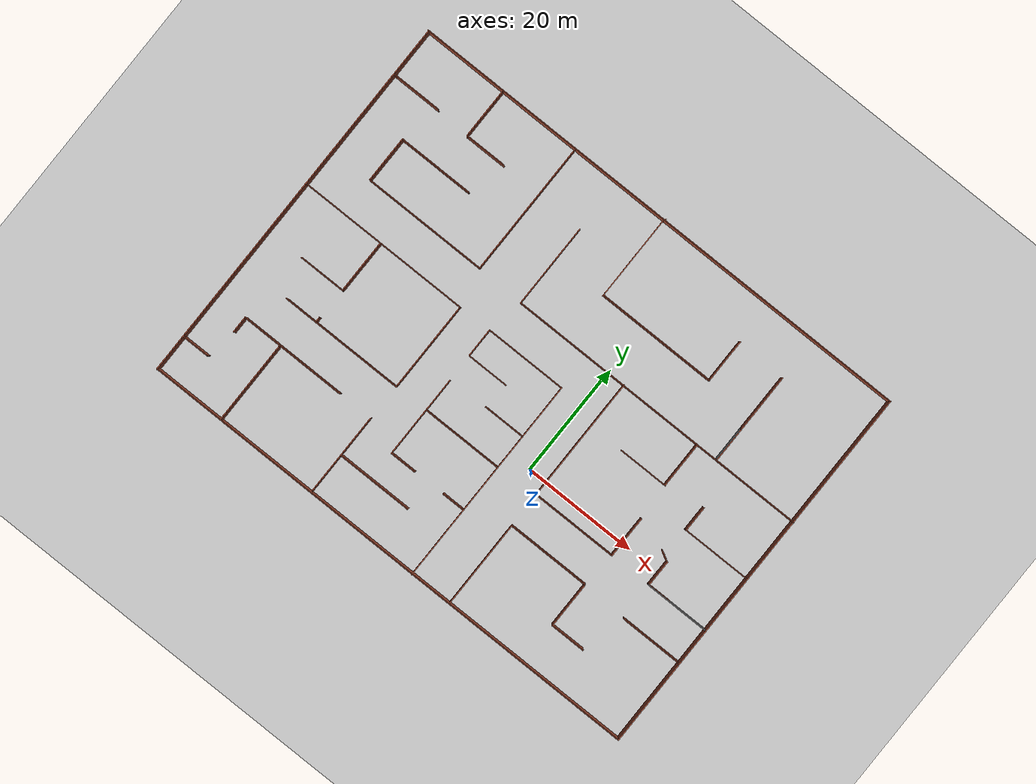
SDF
<sdf version="1.6">
 <world name="default">
  <light name="sun" type="directional">
   <pose>0 0 10 0 -0 0</pose>
   <diffuse>0.8 0.8 0.8 1</diffuse>
   <specular>0.1 0.1 0.1 1</specular>
   <attenuation>
    <range>1000</range>
    <constant>0.9</constant>
    <linear>0.01</linear>
    <quadratic>0.001</quadratic>
   </attenuation>
   <direction>-0.5 0.5 -1</direction>
  </light>
  <model name="ground_plane">
   <static>1</static>
   <link name="link">
    <collision name="collision">
     <geometry><plane><normal>0 0 1</normal><size>100 100</size></plane></geometry>
     <surface><friction><ode><mu>100</mu><mu2>50</mu2></ode></friction></surface>
    </collision>
    <visual name="visual">
     <cast_shadows>0</cast_shadows>
     <geometry><plane><normal>0 0 1</normal><size>100 100</size></plane></geometry>
     <material>
      <script><uri>file://media/materials/scripts/gazebo.material</uri><name>Gazebo/Grey</name></script>
     </material>
    </visual>
   </link>
  </model>
  <physics name="default_physics" default="0" type="ode">
   <max_step_size>0.01</max_step_size>
   <real_time_factor>1</real_time_factor>
   <real_time_update_rate>100</real_time_update_rate>
  </physics>
  <gravity>0 0 -9.8</gravity>
  <magnetic_field>6e-06 2.3e-05 -4.2e-05</magnetic_field>
  <atmosphere type="adiabatic"/>
  <scene><ambient>0.4 0.4 0.4 1</ambient><background>0.7 0.7 0.7 1</background><shadows>1</shadows></scene>
  <spherical_coordinates>
   <surface_model>EARTH_WGS84</surface_model>
   <latitude_deg>0</latitude_deg>
   <longitude_deg>0</longitude_deg>
   <elevation>0</elevation>
   <heading_deg>0</heading_deg>
  </spherical_coordinates>
  <model name="ROOM">
   <pose>-9.12607 9.74365 0 0 -0 0</pose>
   <link name="Wall_0">
    <collision name="Wall_0_Collision">
     <geometry><box><size>67.5 0.15 2.5</size></box></geometry>
     <pose>0 0 1.25 0 -0 0</pose>
    </collision>
    <visual name="Wall_0_Visual">
     <pose>0 0 1.25 0 -0 0</pose>
     <geometry><box><size>67.5 0.15 2.5</size></box></geometry>
     <material>
      <script><uri>file://media/materials/scripts/gazebo.material</uri><name>Gazebo/Bricks</name></script>
      <ambient>1 1 1 1</ambient>
     </material>
    </visual>
    <pose>-45.9078 -0.131946 0 0 -0 1.5708</pose>
   </link>
   <link name="Wall_10">
    <collision name="Wall_10_Collision">
     <geometry><box><size>37.25 0.15 2.5</size></box></geometry>
     <pose>0 0 1.25 0 -0 0</pose>
    </collision>
    <visual name="Wall_10_Visual">
     <pose>0 0 1.25 0 -0 0</pose>
     <geometry><box><size>37.25 0.15 2.5</size></box></geometry>
     <material>
      <script><uri>file://media/materials/scripts/gazebo.material</uri><name>Gazebo/Bricks</name></script>
      <ambient>1 1 1 1</ambient>
     </material>
    </visual>
    <pose>4.88469 -15.2529 0 0 0 -1.5708</pose>
   </link>
   <link name="Wall_101">
    <collision name="Wall_101_Collision">
     <geometry><box><size>11.4433 0.15 2.5</size></box></geometry>
     <pose>0 0 1.25 0 -0 0</pose>
    </collision>
    <visual name="Wall_101_Visual">
     <pose>0 0 1.25 0 -0 0</pose>
     <geometry><box><size>11.4433 0.15 2.5</size></box></geometry>
     <material>
      <script><uri>file://media/materials/scripts/gazebo.material</uri><name>Gazebo/Grey</name></script>
      <ambient>1 1 1 1</ambient>
     </material>
    </visual>
    <pose>40.1712 -12.0489 0 0 -0 0</pose>
   </link>
   <link name="Wall_102">
    <collision name="Wall_102_Collision">
     <geometry><box><size>11.4433 0.15 2.5</size></box></geometry>
     <pose>0 0 1.25 0 -0 0</pose>
    </collision>
    <visual name="Wall_102_Visual">
     <pose>0 0 1.25 0 -0 0</pose>
     <geometry><box><size>11.4433 0.15 2.5</size></box></geometry>
     <material>
      <script><uri>file://media/materials/scripts/gazebo.material</uri><name>Gazebo/Bricks</name></script>
      <ambient>1 1 1 1</ambient>
     </material>
    </visual>
    <pose>40.1712 -12.0489 0 0 -0 3.14159</pose>
   </link>
   <link name="Wall_103">
    <collision name="Wall_103_Collision">
     <geometry><box><size>4.75 0.15 2.5</size></box></geometry>
     <pose>0 0 1.25 0 -0 0</pose>
    </collision>
    <visual name="Wall_103_Visual">
     <pose>0 0 1.25 0 -0 0</pose>
     <geometry><box><size>4.75 0.15 2.5</size></box></geometry>
     <material>
      <script><uri>file://media/materials/scripts/gazebo.material</uri><name>Gazebo/Bricks</name></script>
      <ambient>1 1 1 1</ambient>
     </material>
    </visual>
    <pose>34.5953 -9.74895 0 0 -0 1.5708</pose>
   </link>
   <link name="Wall_104">
    <collision name="Wall_104_Collision">
     <geometry><box><size>1.92361 0.15 2.5</size></box></geometry>
     <pose>0 0 1.25 0 -0 0</pose>
    </collision>
    <visual name="Wall_104_Visual">
     <pose>0 0 1.25 0 -0 0</pose>
     <geometry><box><size>1.92361 0.15 2.5</size></box></geometry>
     <material>
      <script><uri>file://media/materials/scripts/gazebo.material</uri><name>Gazebo/Bricks</name></script>
      <ambient>1 1 1 1</ambient>
     </material>
    </visual>
    <pose>33.7462 -7.02395 0 0 -0 2.64179</pose>
   </link>
   <link name="Wall_106">
    <collision name="Wall_106_Collision">
     <geometry><box><size>4.5 0.15 2.5</size></box></geometry>
     <pose>0 0 1.25 0 -0 0</pose>
    </collision>
    <visual name="Wall_106_Visual">
     <pose>0 0 1.25 0 -0 0</pose>
     <geometry><box><size>4.5 0.15 2.5</size></box></geometry>
     <material>
      <script><uri>file://media/materials/scripts/gazebo.material</uri><name>Gazebo/Bricks</name></script>
      <ambient>1 1 1 1</ambient>
     </material>
    </visual>
    <pose>33.7603 0.456582 0 0 -0 1.5708</pose>
   </link>
   <link name="Wall_108">
    <collision name="Wall_108_Collision">
     <geometry><box><size>6.25 0.15 2.5</size></box></geometry>
     <pose>0 0 1.25 0 -0 0</pose>
    </collision>
    <visual name="Wall_108_Visual">
     <pose>0 0 1.25 0 -0 0</pose>
     <geometry><box><size>6.25 0.15 2.5</size></box></geometry>
     <material>
      <script><uri>file://media/materials/scripts/gazebo.material</uri><name>Gazebo/Bricks</name></script>
      <ambient>1 1 1 1</ambient>
     </material>
    </visual>
    <pose>29.9077 -26.3217 0 0 -0 0</pose>
   </link>
   <link name="Wall_110">
    <collision name="Wall_110_Collision">
     <geometry><box><size>10.75 0.15 2.5</size></box></geometry>
     <pose>0 0 1.25 0 -0 0</pose>
    </collision>
    <visual name="Wall_110_Visual">
     <pose>0 0 1.25 0 -0 0</pose>
     <geometry><box><size>10.75 0.15 2.5</size></box></geometry>
     <material>
      <script><uri>file://media/materials/scripts/gazebo.material</uri><name>Gazebo/Bricks</name></script>
      <ambient>1 1 1 1</ambient>
     </material>
    </visual>
    <pose>40.2354 -18.5752 0 0 -0 0</pose>
   </link>
   <link name="Wall_12">
    <collision name="Wall_12_Collision">
     <geometry><box><size>22 0.15 2.5</size></box></geometry>
     <pose>0 0 1.25 0 -0 0</pose>
    </collision>
    <visual name="Wall_12_Visual">
     <pose>0 0 1.25 0 -0 0</pose>
     <geometry><box><size>22 0.15 2.5</size></box></geometry>
     <material>
      <script><uri>file://media/materials/scripts/gazebo.material</uri><name>Gazebo/Bricks</name></script>
      <ambient>1 1 1 1</ambient>
     </material>
    </visual>
    <pose>-27.6266 9.81099 0 0 -0 0</pose>
   </link>
   <link name="Wall_14">
    <collision name="Wall_14_Collision">
     <geometry><box><size>23.75 0.15 2.5</size></box></geometry>
     <pose>0 0 1.25 0 -0 0</pose>
    </collision>
    <visual name="Wall_14_Visual">
     <pose>0 0 1.25 0 -0 0</pose>
     <geometry><box><size>23.75 0.15 2.5</size></box></geometry>
     <material>
      <script><uri>file://media/materials/scripts/gazebo.material</uri><name>Gazebo/Bricks</name></script>
      <ambient>1 1 1 1</ambient>
     </material>
    </visual>
    <pose>-16.7016 21.611 0 0 -0 1.5708</pose>
   </link>
   <link name="Wall_16">
    <collision name="Wall_16_Collision">
     <geometry><box><size>14.75 0.15 2.5</size></box></geometry>
     <pose>0 0 1.25 0 -0 0</pose>
    </collision>
    <visual name="Wall_16_Visual">
     <pose>0 0 1.25 0 -0 0</pose>
     <geometry><box><size>14.75 0.15 2.5</size></box></geometry>
     <material>
      <script><uri>file://media/materials/scripts/gazebo.material</uri><name>Gazebo/Bricks</name></script>
      <ambient>1 1 1 1</ambient>
     </material>
    </visual>
    <pose>-8.36079 16.9183 0 0 0 -1.5708</pose>
   </link>
   <link name="Wall_17">
    <collision name="Wall_17_Collision">
     <geometry><box><size>54.5 0.15 2.5</size></box></geometry>
     <pose>0 0 1.25 0 -0 0</pose>
    </collision>
    <visual name="Wall_17_Visual">
     <pose>0 0 1.25 0 -0 0</pose>
     <geometry><box><size>54.5 0.15 2.5</size></box></geometry>
     <material>
      <script><uri>file://media/materials/scripts/gazebo.material</uri><name>Gazebo/Bricks</name></script>
      <ambient>1 1 1 1</ambient>
     </material>
    </visual>
    <pose>18.8142 9.61828 0 0 -0 0</pose>
   </link>
   <link name="Wall_20">
    <collision name="Wall_20_Collision">
     <geometry><box><size>22 0.15 2.5</size></box></geometry>
     <pose>0 0 1.25 0 -0 0</pose>
    </collision>
    <visual name="Wall_20_Visual">
     <pose>0 0 1.25 0 -0 0</pose>
     <geometry><box><size>22 0.15 2.5</size></box></geometry>
     <material>
      <script><uri>file://media/materials/scripts/gazebo.material</uri><name>Gazebo/Bricks</name></script>
      <ambient>1 1 1 1</ambient>
     </material>
    </visual>
    <pose>12.1547 -1.17184 0 0 0 -1.5708</pose>
   </link>
   <link name="Wall_22">
    <collision name="Wall_22_Collision">
     <geometry><box><size>30.5 0.15 2.5</size></box></geometry>
     <pose>0 0 1.25 0 -0 0</pose>
    </collision>
    <visual name="Wall_22_Visual">
     <pose>0 0 1.25 0 -0 0</pose>
     <geometry><box><size>30.5 0.15 2.5</size></box></geometry>
     <material>
      <script><uri>file://media/materials/scripts/gazebo.material</uri><name>Gazebo/Bricks</name></script>
      <ambient>1 1 1 1</ambient>
     </material>
    </visual>
    <pose>-30.4322 3.18983 0 0 -0 3.14159</pose>
   </link>
   <link name="Wall_23">
    <collision name="Wall_23_Collision">
     <geometry><box><size>0.5 0.15 2.5</size></box></geometry>
     <pose>0 0 1.25 0 -0 0</pose>
    </collision>
    <visual name="Wall_23_Visual">
     <pose>0 0 1.25 0 -0 0</pose>
     <geometry><box><size>0.5 0.15 2.5</size></box></geometry>
     <material>
      <script><uri>file://media/materials/scripts/gazebo.material</uri><name>Gazebo/Bricks</name></script>
      <ambient>1 1 1 1</ambient>
     </material>
    </visual>
    <pose>-45.7822 3.18983 0 0 -0 3.14159</pose>
   </link>
   <link name="Wall_25">
    <collision name="Wall_25_Collision">
     <geometry><box><size>16 0.15 2.5</size></box></geometry>
     <pose>0 0 1.25 0 -0 0</pose>
    </collision>
    <visual name="Wall_25_Visual">
     <pose>0 0 1.25 0 -0 0</pose>
     <geometry><box><size>16 0.15 2.5</size></box></geometry>
     <material>
      <script><uri>file://media/materials/scripts/gazebo.material</uri><name>Gazebo/Bricks</name></script>
      <ambient>1 1 1 1</ambient>
     </material>
    </visual>
    <pose>-15.2572 -4.73517 0 0 0 -1.5708</pose>
   </link>
   <link name="Wall_26">
    <collision name="Wall_26_Collision">
     <geometry><box><size>22 0.15 2.5</size></box></geometry>
     <pose>0 0 1.25 0 -0 0</pose>
    </collision>
    <visual name="Wall_26_Visual">
     <pose>0 0 1.25 0 -0 0</pose>
     <geometry><box><size>22 0.15 2.5</size></box></geometry>
     <material>
      <script><uri>file://media/materials/scripts/gazebo.material</uri><name>Gazebo/Bricks</name></script>
      <ambient>1 1 1 1</ambient>
     </material>
    </visual>
    <pose>-26.1822 -12.6602 0 0 -0 3.14159</pose>
   </link>
   <link name="Wall_28">
    <collision name="Wall_28_Collision">
     <geometry><box><size>9.5 0.15 2.5</size></box></geometry>
     <pose>0 0 1.25 0 -0 0</pose>
    </collision>
    <visual name="Wall_28_Visual">
     <pose>0 0 1.25 0 -0 0</pose>
     <geometry><box><size>9.5 0.15 2.5</size></box></geometry>
     <material>
      <script><uri>file://media/materials/scripts/gazebo.material</uri><name>Gazebo/Bricks</name></script>
      <ambient>1 1 1 1</ambient>
     </material>
    </visual>
    <pose>-31.1245 -1.56654 0 0 0 -1.5708</pose>
   </link>
   <link name="Wall_31">
    <collision name="Wall_31_Collision">
     <geometry><box><size>19 0.15 2.5</size></box></geometry>
     <pose>0 0 1.25 0 -0 0</pose>
    </collision>
    <visual name="Wall_31_Visual">
     <pose>0 0 1.25 0 -0 0</pose>
     <geometry><box><size>19 0.15 2.5</size></box></geometry>
     <material>
      <script><uri>file://media/materials/scripts/gazebo.material</uri><name>Gazebo/Bricks</name></script>
      <ambient>1 1 1 1</ambient>
     </material>
    </visual>
    <pose>-30.8312 -18.9802 0 0 -0 0</pose>
   </link>
   <link name="Wall_33">
    <collision name="Wall_33_Collision">
     <geometry><box><size>3 0.15 2.5</size></box></geometry>
     <pose>0 0 1.25 0 -0 0</pose>
    </collision>
    <visual name="Wall_33_Visual">
     <pose>0 0 1.25 0 -0 0</pose>
     <geometry><box><size>3 0.15 2.5</size></box></geometry>
     <material>
      <script><uri>file://media/materials/scripts/gazebo.material</uri><name>Gazebo/Bricks</name></script>
      <ambient>1 1 1 1</ambient>
     </material>
    </visual>
    <pose>-40.2562 -20.4052 0 0 0 -1.5708</pose>
   </link>
   <link name="Wall_36">
    <collision name="Wall_36_Collision">
     <geometry><box><size>4.75 0.15 2.5</size></box></geometry>
     <pose>0 0 1.25 0 -0 0</pose>
    </collision>
    <visual name="Wall_36_Visual">
     <pose>0 0 1.25 0 -0 0</pose>
     <geometry><box><size>4.75 0.15 2.5</size></box></geometry>
     <material>
      <script><uri>file://media/materials/scripts/gazebo.material</uri><name>Gazebo/Bricks</name></script>
      <ambient>1 1 1 1</ambient>
     </material>
    </visual>
    <pose>-43.462 -27.2651 0 0 -0 0</pose>
   </link>
   <link name="Wall_38">
    <collision name="Wall_38_Collision">
     <geometry><box><size>14.75 0.15 2.5</size></box></geometry>
     <pose>0 0 1.25 0 -0 0</pose>
    </collision>
    <visual name="Wall_38_Visual">
     <pose>0 0 1.25 0 -0 0</pose>
     <geometry><box><size>14.75 0.15 2.5</size></box></geometry>
     <material>
      <script><uri>file://media/materials/scripts/gazebo.material</uri><name>Gazebo/Bricks</name></script>
      <ambient>1 1 1 1</ambient>
     </material>
    </visual>
    <pose>-33.3163 -26.3611 0 0 0 -1.5708</pose>
   </link>
   <link name="Wall_40">
    <collision name="Wall_40_Collision">
     <geometry><box><size>8.25 0.15 2.5</size></box></geometry>
     <pose>0 0 1.25 0 -0 0</pose>
    </collision>
    <visual name="Wall_40_Visual">
     <pose>0 0 1.25 0 -0 0</pose>
     <geometry><box><size>8.25 0.15 2.5</size></box></geometry>
     <material>
      <script><uri>file://media/materials/scripts/gazebo.material</uri><name>Gazebo/Bricks</name></script>
      <ambient>1 1 1 1</ambient>
     </material>
    </visual>
    <pose>-35.1745 -6.24154 0 0 -0 3.14159</pose>
   </link>
   <link name="Wall_42">
    <collision name="Wall_42_Collision">
     <geometry><box><size>1 0.15 2.5</size></box></geometry>
     <pose>0 0 1.25 0 -0 0</pose>
    </collision>
    <visual name="Wall_42_Visual">
     <pose>0 0 1.25 0 -0 0</pose>
     <geometry><box><size>1 0.15 2.5</size></box></geometry>
     <material>
      <script><uri>file://media/materials/scripts/gazebo.material</uri><name>Gazebo/Bricks</name></script>
      <ambient>1 1 1 1</ambient>
     </material>
    </visual>
    <pose>-31.2761 -12.1959 0 0 -0 1.5708</pose>
   </link>
   <link name="Wall_44">
    <collision name="Wall_44_Collision">
     <geometry><box><size>5.25 0.15 2.5</size></box></geometry>
     <pose>0 0 1.25 0 -0 0</pose>
    </collision>
    <visual name="Wall_44_Visual">
     <pose>0 0 1.25 0 -0 0</pose>
     <geometry><box><size>5.25 0.15 2.5</size></box></geometry>
     <material>
      <script><uri>file://media/materials/scripts/gazebo.material</uri><name>Gazebo/Bricks</name></script>
      <ambient>1 1 1 1</ambient>
     </material>
    </visual>
    <pose>-9.46531 0.747103 0 0 0 -1.5708</pose>
   </link>
   <link name="Wall_47">
    <collision name="Wall_47_Collision">
     <geometry><box><size>6 0.15 2.5</size></box></geometry>
     <pose>0 0 1.25 0 -0 0</pose>
    </collision>
    <visual name="Wall_47_Visual">
     <pose>0 0 1.25 0 -0 0</pose>
     <geometry><box><size>6 0.15 2.5</size></box></geometry>
     <material>
      <script><uri>file://media/materials/scripts/gazebo.material</uri><name>Gazebo/Bricks</name></script>
      <ambient>1 1 1 1</ambient>
     </material>
    </visual>
    <pose>-9.37077 -9.6294 0 0 0 -1.5708</pose>
   </link>
   <link name="Wall_48">
    <collision name="Wall_48_Collision">
     <geometry><box><size>14.25 0.15 2.5</size></box></geometry>
     <pose>0 0 1.25 0 -0 0</pose>
    </collision>
    <visual name="Wall_48_Visual">
     <pose>0 0 1.25 0 -0 0</pose>
     <geometry><box><size>14.25 0.15 2.5</size></box></geometry>
     <material>
      <script><uri>file://media/materials/scripts/gazebo.material</uri><name>Gazebo/Bricks</name></script>
      <ambient>1 1 1 1</ambient>
     </material>
    </visual>
    <pose>-2.32077 -12.5544 0 0 -0 0</pose>
   </link>
   <link name="Wall_5">
    <collision name="Wall_5_Collision">
     <geometry><box><size>92.0814 0.15 2.5</size></box></geometry>
     <pose>0 0 1.25 0 -0 0</pose>
    </collision>
    <visual name="Wall_5_Visual">
     <pose>0 0 1.25 0 -0 0</pose>
     <geometry><box><size>92.0814 0.15 2.5</size></box></geometry>
     <material>
      <script><uri>file://media/materials/scripts/gazebo.material</uri><name>Gazebo/Bricks</name></script>
      <ambient>1 1 1 1</ambient>
     </material>
    </visual>
    <pose>-0.023456 33.5837 0 0 -0 0.000885</pose>
   </link>
   <link name="Wall_50">
    <collision name="Wall_50_Collision">
     <geometry><box><size>7.5 0.15 2.5</size></box></geometry>
     <pose>0 0 1.25 0 -0 0</pose>
    </collision>
    <visual name="Wall_50_Visual">
     <pose>0 0 1.25 0 -0 0</pose>
     <geometry><box><size>7.5 0.15 2.5</size></box></geometry>
     <material>
      <script><uri>file://media/materials/scripts/gazebo.material</uri><name>Gazebo/Bricks</name></script>
      <ambient>1 1 1 1</ambient>
     </material>
    </visual>
    <pose>1.2287 -6.39676 0 0 -0 3.14159</pose>
   </link>
   <link name="Wall_52">
    <collision name="Wall_52_Collision">
     <geometry><box><size>7.5 0.15 2.5</size></box></geometry>
     <pose>0 0 1.25 0 -0 0</pose>
    </collision>
    <visual name="Wall_52_Visual">
     <pose>0 0 1.25 0 -0 0</pose>
     <geometry><box><size>7.5 0.15 2.5</size></box></geometry>
     <material>
      <script><uri>file://media/materials/scripts/gazebo.material</uri><name>Gazebo/Bricks</name></script>
      <ambient>1 1 1 1</ambient>
     </material>
    </visual>
    <pose>-5.79031 -1.8029 0 0 -0 0</pose>
   </link>
   <link name="Wall_56">
    <collision name="Wall_56_Collision">
     <geometry><box><size>14.75 0.15 2.5</size></box></geometry>
     <pose>0 0 1.25 0 -0 0</pose>
    </collision>
    <visual name="Wall_56_Visual">
     <pose>0 0 1.25 0 -0 0</pose>
     <geometry><box><size>14.75 0.15 2.5</size></box></geometry>
     <material>
      <script><uri>file://media/materials/scripts/gazebo.material</uri><name>Gazebo/Bricks</name></script>
      <ambient>1 1 1 1</ambient>
     </material>
    </visual>
    <pose>-15.2936 -26.3148 0 0 0 -1.5708</pose>
   </link>
   <link name="Wall_58">
    <collision name="Wall_58_Collision">
     <geometry><box><size>8.75 0.15 2.5</size></box></geometry>
     <pose>0 0 1.25 0 -0 0</pose>
    </collision>
    <visual name="Wall_58_Visual">
     <pose>0 0 1.25 0 -0 0</pose>
     <geometry><box><size>8.75 0.15 2.5</size></box></geometry>
     <material>
      <script><uri>file://media/materials/scripts/gazebo.material</uri><name>Gazebo/Bricks</name></script>
      <ambient>1 1 1 1</ambient>
     </material>
    </visual>
    <pose>-9.37077 -16.8544 0 0 0 -1.5708</pose>
   </link>
   <link name="Wall_59">
    <collision name="Wall_59_Collision">
     <geometry><box><size>4.75 0.15 2.5</size></box></geometry>
     <pose>0 0 1.25 0 -0 0</pose>
    </collision>
    <visual name="Wall_59_Visual">
     <pose>0 0 1.25 0 -0 0</pose>
     <geometry><box><size>4.75 0.15 2.5</size></box></geometry>
     <material>
      <script><uri>file://media/materials/scripts/gazebo.material</uri><name>Gazebo/Bricks</name></script>
      <ambient>1 1 1 1</ambient>
     </material>
    </visual>
    <pose>-7.07077 -21.1544 0 0 -0 0</pose>
   </link>
   <link name="Wall_6">
    <collision name="Wall_6_Collision">
     <geometry><box><size>67.5 0.15 2.5</size></box></geometry>
     <pose>0 0 1.25 0 -0 0</pose>
    </collision>
    <visual name="Wall_6_Visual">
     <pose>0 0 1.25 0 -0 0</pose>
     <geometry><box><size>67.5 0.15 2.5</size></box></geometry>
     <material>
      <script><uri>file://media/materials/scripts/gazebo.material</uri><name>Gazebo/Bricks</name></script>
      <ambient>1 1 1 1</ambient>
     </material>
    </visual>
    <pose>45.9422 -0.050575 0 0 0 -1.5708</pose>
   </link>
   <link name="Wall_61">
    <collision name="Wall_61_Collision">
     <geometry><box><size>13.5 0.15 2.5</size></box></geometry>
     <pose>0 0 1.25 0 -0 0</pose>
    </collision>
    <visual name="Wall_61_Visual">
     <pose>0 0 1.25 0 -0 0</pose>
     <geometry><box><size>13.5 0.15 2.5</size></box></geometry>
     <material>
      <script><uri>file://media/materials/scripts/gazebo.material</uri><name>Gazebo/Bricks</name></script>
      <ambient>1 1 1 1</ambient>
     </material>
    </visual>
    <pose>-8.61861 -26.3325 0 0 -0 0</pose>
   </link>
   <link name="Wall_63">
    <collision name="Wall_63_Collision">
     <geometry><box><size>4 0.15 2.5</size></box></geometry>
     <pose>0 0 1.25 0 -0 0</pose>
    </collision>
    <visual name="Wall_63_Visual">
     <pose>0 0 1.25 0 -0 0</pose>
     <geometry><box><size>4 0.15 2.5</size></box></geometry>
     <material>
      <script><uri>file://media/materials/scripts/gazebo.material</uri><name>Gazebo/Bricks</name></script>
      <ambient>1 1 1 1</ambient>
     </material>
    </visual>
    <pose>2.80683 -21.0369 0 0 -0 3.14159</pose>
   </link>
   <link name="Wall_67">
    <collision name="Wall_67_Collision">
     <geometry><box><size>8.25 0.15 2.5</size></box></geometry>
     <pose>0 0 1.25 0 -0 0</pose>
    </collision>
    <visual name="Wall_67_Visual">
     <pose>0 0 1.25 0 -0 0</pose>
     <geometry><box><size>8.25 0.15 2.5</size></box></geometry>
     <material>
      <script><uri>file://media/materials/scripts/gazebo.material</uri><name>Gazebo/Bricks</name></script>
      <ambient>1 1 1 1</ambient>
     </material>
    </visual>
    <pose>-38.5516 13.861 0 0 -0 1.5708</pose>
   </link>
   <link name="Wall_68">
    <collision name="Wall_68_Collision">
     <geometry><box><size>13.25 0.15 2.5</size></box></geometry>
     <pose>0 0 1.25 0 -0 0</pose>
    </collision>
    <visual name="Wall_68_Visual">
     <pose>0 0 1.25 0 -0 0</pose>
     <geometry><box><size>13.25 0.15 2.5</size></box></geometry>
     <material>
      <script><uri>file://media/materials/scripts/gazebo.material</uri><name>Gazebo/Bricks</name></script>
      <ambient>1 1 1 1</ambient>
     </material>
    </visual>
    <pose>-32.0016 17.911 0 0 -0 0</pose>
   </link>
   <link name="Wall_7">
    <collision name="Wall_7_Collision">
     <geometry><box><size>92 0.15 2.5</size></box></geometry>
     <pose>0 0 1.25 0 -0 0</pose>
    </collision>
    <visual name="Wall_7_Visual">
     <pose>0 0 1.25 0 -0 0</pose>
     <geometry><box><size>92 0.15 2.5</size></box></geometry>
     <material>
      <script><uri>file://media/materials/scripts/gazebo.material</uri><name>Gazebo/Bricks</name></script>
      <ambient>1 1 1 1</ambient>
     </material>
    </visual>
    <pose>0.01723 -33.7256 0 0 -0 3.14159</pose>
   </link>
   <link name="Wall_71">
    <collision name="Wall_71_Collision">
     <geometry><box><size>9 0.15 2.5</size></box></geometry>
     <pose>0 0 1.25 0 -0 0</pose>
    </collision>
    <visual name="Wall_71_Visual">
     <pose>0 0 1.25 0 -0 0</pose>
     <geometry><box><size>9 0.15 2.5</size></box></geometry>
     <material>
      <script><uri>file://media/materials/scripts/gazebo.material</uri><name>Gazebo/Bricks</name></script>
      <ambient>1 1 1 1</ambient>
     </material>
    </visual>
    <pose>-31.0945 29.0125 0 0 0 -1.5708</pose>
   </link>
   <link name="Wall_73">
    <collision name="Wall_73_Collision">
     <geometry><box><size>8.5 0.15 2.5</size></box></geometry>
     <pose>0 0 1.25 0 -0 0</pose>
    </collision>
    <visual name="Wall_73_Visual">
     <pose>0 0 1.25 0 -0 0</pose>
     <geometry><box><size>8.5 0.15 2.5</size></box></geometry>
     <material>
      <script><uri>file://media/materials/scripts/gazebo.material</uri><name>Gazebo/Bricks</name></script>
      <ambient>1 1 1 1</ambient>
     </material>
    </visual>
    <pose>-41.3536 24.9689 0 0 -0 3.14159</pose>
   </link>
   <link name="Wall_74">
    <collision name="Wall_74_Collision">
     <geometry><box><size>0.25 0.15 2.5</size></box></geometry>
     <pose>0 0 1.25 0 -0 0</pose>
    </collision>
    <visual name="Wall_74_Visual">
     <pose>0 0 1.25 0 -0 0</pose>
     <geometry><box><size>0.25 0.15 2.5</size></box></geometry>
     <material>
      <script><uri>file://media/materials/scripts/gazebo.material</uri><name>Gazebo/Bricks</name></script>
      <ambient>1 1 1 1</ambient>
     </material>
    </visual>
    <pose>-45.5719 24.9439 0 0 0 -2.61799</pose>
   </link>
   <link name="Wall_76">
    <collision name="Wall_76_Collision">
     <geometry><box><size>7.25 0.15 2.5</size></box></geometry>
     <pose>0 0 1.25 0 -0 0</pose>
    </collision>
    <visual name="Wall_76_Visual">
     <pose>0 0 1.25 0 -0 0</pose>
     <geometry><box><size>7.25 0.15 2.5</size></box></geometry>
     <material>
      <script><uri>file://media/materials/scripts/gazebo.material</uri><name>Gazebo/Bricks</name></script>
      <ambient>1 1 1 1</ambient>
     </material>
    </visual>
    <pose>-27.3187 24.606 0 0 -0 0</pose>
   </link>
   <link name="Wall_78">
    <collision name="Wall_78_Collision">
     <geometry><box><size>14.75 0.15 2.5</size></box></geometry>
     <pose>0 0 1.25 0 -0 0</pose>
    </collision>
    <visual name="Wall_78_Visual">
     <pose>0 0 1.25 0 -0 0</pose>
     <geometry><box><size>14.75 0.15 2.5</size></box></geometry>
     <material>
      <script><uri>file://media/materials/scripts/gazebo.material</uri><name>Gazebo/Bricks</name></script>
      <ambient>1 1 1 1</ambient>
     </material>
    </visual>
    <pose>0.909719 25.9105 0 0 -0 1.5708</pose>
   </link>
   <link name="Wall_79">
    <collision name="Wall_79_Collision">
     <geometry><box><size>0.75 0.15 2.5</size></box></geometry>
     <pose>0 0 1.25 0 -0 0</pose>
    </collision>
    <visual name="Wall_79_Visual">
     <pose>0 0 1.25 0 -0 0</pose>
     <geometry><box><size>0.75 0.15 2.5</size></box></geometry>
     <material>
      <script><uri>file://media/materials/scripts/gazebo.material</uri><name>Gazebo/Bricks</name></script>
      <ambient>1 1 1 1</ambient>
     </material>
    </visual>
    <pose>0.987365 33.5003 0 0 -0 1.309</pose>
   </link>
   <link name="Wall_81">
    <collision name="Wall_81_Collision">
     <geometry><box><size>21.25 0.15 2.5</size></box></geometry>
     <pose>0 0 1.25 0 -0 0</pose>
    </collision>
    <visual name="Wall_81_Visual">
     <pose>0 0 1.25 0 -0 0</pose>
     <geometry><box><size>21.25 0.15 2.5</size></box></geometry>
     <material>
      <script><uri>file://media/materials/scripts/gazebo.material</uri><name>Gazebo/Bricks</name></script>
      <ambient>1 1 1 1</ambient>
     </material>
    </visual>
    <pose>11.4597 18.6105 0 0 -0 0</pose>
   </link>
   <link name="Wall_82">
    <collision name="Wall_82_Collision">
     <geometry><box><size>7.75 0.15 2.5</size></box></geometry>
     <pose>0 0 1.25 0 -0 0</pose>
    </collision>
    <visual name="Wall_82_Visual">
     <pose>0 0 1.25 0 -0 0</pose>
     <geometry><box><size>7.75 0.15 2.5</size></box></geometry>
     <material>
      <script><uri>file://media/materials/scripts/gazebo.material</uri><name>Gazebo/Bricks</name></script>
      <ambient>1 1 1 1</ambient>
     </material>
    </visual>
    <pose>22.0097 22.4105 0 0 -0 1.5708</pose>
   </link>
   <link name="Wall_84">
    <collision name="Wall_84_Collision">
     <geometry><box><size>8 0.15 2.5</size></box></geometry>
     <pose>0 0 1.25 0 -0 0</pose>
    </collision>
    <visual name="Wall_84_Visual">
     <pose>0 0 1.25 0 -0 0</pose>
     <geometry><box><size>8 0.15 2.5</size></box></geometry>
     <material>
      <script><uri>file://media/materials/scripts/gazebo.material</uri><name>Gazebo/Grey</name></script>
      <ambient>1 1 1 1</ambient>
     </material>
    </visual>
    <pose>30.6477 13.7445 0 0 0 -1.5708</pose>
   </link>
   <link name="Wall_85">
    <collision name="Wall_85_Collision">
     <geometry><box><size>16.25 0.15 2.5</size></box></geometry>
     <pose>0 0 1.25 0 -0 0</pose>
    </collision>
    <visual name="Wall_85_Visual">
     <pose>0 0 1.25 0 -0 0</pose>
     <geometry><box><size>16.25 0.15 2.5</size></box></geometry>
     <material>
      <script><uri>file://media/materials/scripts/gazebo.material</uri><name>Gazebo/Bricks</name></script>
      <ambient>1 1 1 1</ambient>
     </material>
    </visual>
    <pose>30.6477 17.8695 0 0 -0 1.5708</pose>
   </link>
   <link name="Wall_87">
    <collision name="Wall_87_Collision">
     <geometry><box><size>15.5 0.15 2.5</size></box></geometry>
     <pose>0 0 1.25 0 -0 0</pose>
    </collision>
    <visual name="Wall_87_Visual">
     <pose>0 0 1.25 0 -0 0</pose>
     <geometry><box><size>15.5 0.15 2.5</size></box></geometry>
     <material>
      <script><uri>file://media/materials/scripts/gazebo.material</uri><name>Gazebo/Bricks</name></script>
      <ambient>1 1 1 1</ambient>
     </material>
    </visual>
    <pose>12.2577 -25.8967 0 0 0 -1.5708</pose>
   </link>
   <link name="Wall_89">
    <collision name="Wall_89_Collision">
     <geometry><box><size>15.25 0.15 2.5</size></box></geometry>
     <pose>0 0 1.25 0 -0 0</pose>
    </collision>
    <visual name="Wall_89_Visual">
     <pose>0 0 1.25 0 -0 0</pose>
     <geometry><box><size>15.25 0.15 2.5</size></box></geometry>
     <material>
      <script><uri>file://media/materials/scripts/gazebo.material</uri><name>Gazebo/Bricks</name></script>
      <ambient>1 1 1 1</ambient>
     </material>
    </visual>
    <pose>19.7047 -12.0968 0 0 -0 0</pose>
   </link>
   <link name="Wall_9">
    <collision name="Wall_9_Collision">
     <geometry><box><size>14.5 0.15 2.5</size></box></geometry>
     <pose>0 0 1.25 0 -0 0</pose>
    </collision>
    <visual name="Wall_9_Visual">
     <pose>0 0 1.25 0 -0 0</pose>
     <geometry><box><size>14.5 0.15 2.5</size></box></geometry>
     <material>
      <script><uri>file://media/materials/scripts/gazebo.material</uri><name>Gazebo/Bricks</name></script>
      <ambient>1 1 1 1</ambient>
     </material>
    </visual>
    <pose>-2.29031 3.2971 0 0 -0 0</pose>
   </link>
   <link name="Wall_90">
    <collision name="Wall_90_Collision">
     <geometry><box><size>7.5 0.15 2.5</size></box></geometry>
     <pose>0 0 1.25 0 -0 0</pose>
    </collision>
    <visual name="Wall_90_Visual">
     <pose>0 0 1.25 0 -0 0</pose>
     <geometry><box><size>7.5 0.15 2.5</size></box></geometry>
     <material>
      <script><uri>file://media/materials/scripts/gazebo.material</uri><name>Gazebo/Bricks</name></script>
      <ambient>1 1 1 1</ambient>
     </material>
    </visual>
    <pose>27.2547 -8.42184 0 0 -0 1.5708</pose>
   </link>
   <link name="Wall_92">
    <collision name="Wall_92_Collision">
     <geometry><box><size>14.75 0.15 2.5</size></box></geometry>
     <pose>0 0 1.25 0 -0 0</pose>
    </collision>
    <visual name="Wall_92_Visual">
     <pose>0 0 1.25 0 -0 0</pose>
     <geometry><box><size>14.75 0.15 2.5</size></box></geometry>
     <material>
      <script><uri>file://media/materials/scripts/gazebo.material</uri><name>Gazebo/Bricks</name></script>
      <ambient>1 1 1 1</ambient>
     </material>
    </visual>
    <pose>19.5577 -18.2217 0 0 -0 0</pose>
   </link>
   <link name="Wall_93">
    <collision name="Wall_93_Collision">
     <geometry><box><size>8.25 0.15 2.5</size></box></geometry>
     <pose>0 0 1.25 0 -0 0</pose>
    </collision>
    <visual name="Wall_93_Visual">
     <pose>0 0 1.25 0 -0 0</pose>
     <geometry><box><size>8.25 0.15 2.5</size></box></geometry>
     <material>
      <script><uri>file://media/materials/scripts/gazebo.material</uri><name>Gazebo/Bricks</name></script>
      <ambient>1 1 1 1</ambient>
     </material>
    </visual>
    <pose>26.8577 -22.2717 0 0 0 -1.5708</pose>
   </link>
   <link name="Wall_95">
    <collision name="Wall_95_Collision">
     <geometry><box><size>8.75 0.15 2.5</size></box></geometry>
     <pose>0 0 1.25 0 -0 0</pose>
    </collision>
    <visual name="Wall_95_Visual">
     <pose>0 0 1.25 0 -0 0</pose>
     <geometry><box><size>8.75 0.15 2.5</size></box></geometry>
     <material>
      <script><uri>file://media/materials/scripts/gazebo.material</uri><name>Gazebo/Bricks</name></script>
      <ambient>1 1 1 1</ambient>
     </material>
    </visual>
    <pose>22.593 1.56966 0 0 -0 3.14159</pose>
   </link>
   <link name="Wall_97">
    <collision name="Wall_97_Collision">
     <geometry><box><size>8 0.15 2.5</size></box></geometry>
     <pose>0 0 1.25 0 -0 0</pose>
    </collision>
    <visual name="Wall_97_Visual">
     <pose>0 0 1.25 0 -0 0</pose>
     <geometry><box><size>8 0.15 2.5</size></box></geometry>
     <material>
      <script><uri>file://media/materials/scripts/gazebo.material</uri><name>Gazebo/Bricks</name></script>
      <ambient>1 1 1 1</ambient>
     </material>
    </visual>
    <pose>26.8416 5.65762 0 0 -0 1.5708</pose>
   </link>
   <link name="Wall_99">
    <collision name="Wall_99_Collision">
     <geometry><box><size>12.2264 0.15 2.5</size></box></geometry>
     <pose>0 0 1.25 0 -0 0</pose>
    </collision>
    <visual name="Wall_99_Visual">
     <pose>0 0 1.25 0 -0 0</pose>
     <geometry><box><size>12.2264 0.15 2.5</size></box></geometry>
     <material>
      <script><uri>file://media/materials/scripts/gazebo.material</uri><name>Gazebo/Bricks</name></script>
      <ambient>1 1 1 1</ambient>
     </material>
    </visual>
    <pose>39.7985 -1.78917 0 0 -0 0</pose>
   </link>
   <static>1</static>
  </model>
 </world>
</sdf>
